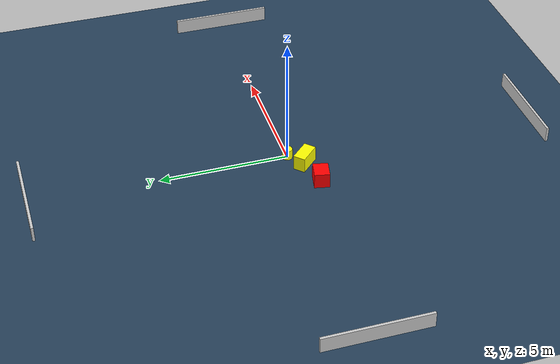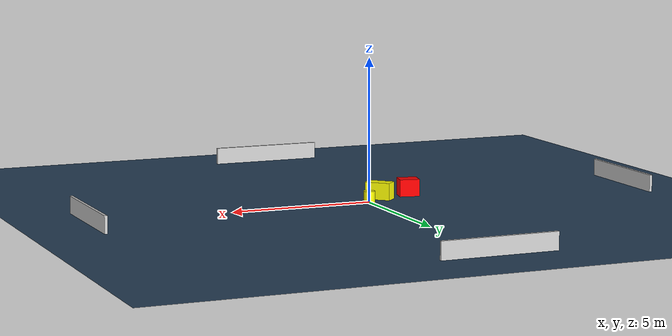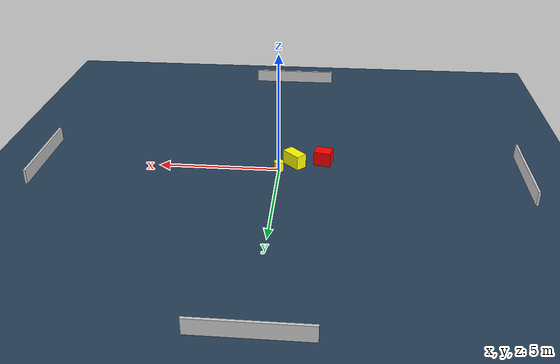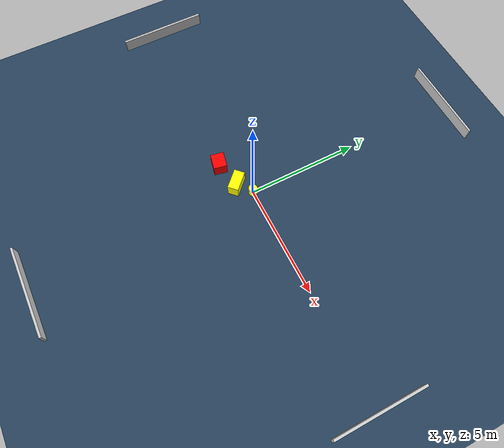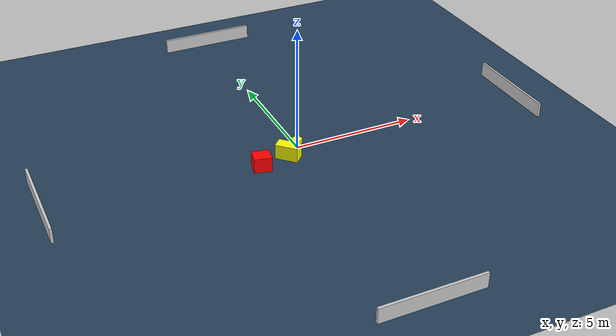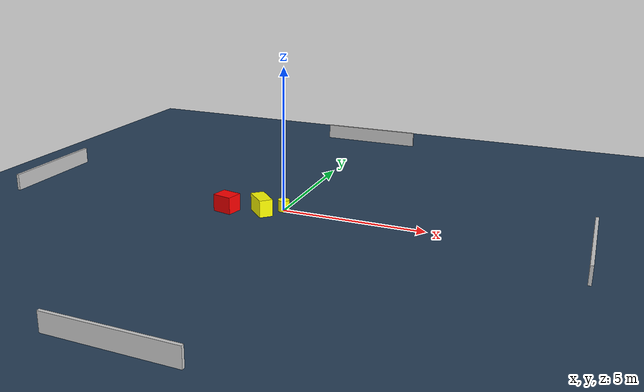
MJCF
<?xml version="1.0" ?>
<mujoco model="generated_environment">
  <option timestep="0.01" integrator="RK4" cone="elliptic"/>
  <default>
    <geom density="1"/>
  </default>
  <asset>
    <texture builtin="gradient" height="3072" name="skybox" rgb1="0.3 0.5 0.7" rgb2="0 0 0" type="skybox" width="512"/>
    <texture builtin="checker" height="300" name="groundplane" rgb1="0.2 0.3 0.4" rgb2="0.1 0.2 0.3" type="2d" width="300"/>
    <material name="groundplane" reflectance="0.2" texrepeat="5 5" texture="groundplane"/>
  </asset>
  <worldbody>
    <light dir="0 0 -1" directional="true" pos="0 0 1.5"/>
    <geom condim="3" friction="0.5 0.005 0.001" material="groundplane" name="floor" pos="0 0 0" size="0 0 0.05" type="plane"/>
    <body name="walls">
      <geom name="wall_1" condim="4" pos="-10.0 0.0 0.3" rgba="0.800000011920929 0.800000011920929 0.800000011920929 1.0" size="0.05 2.0 0.3" type="box"/>
      <geom name="wall_2" condim="4" pos="10.0 0.0 0.3" rgba="0.800000011920929 0.800000011920929 0.800000011920929 1.0" size="0.05 2.0 0.3" type="box"/>
      <geom name="wall_3" condim="4" pos="0.0 -10.0 0.3" rgba="0.800000011920929 0.800000011920929 0.800000011920929 1.0" size="2.0 0.05 0.3" type="box"/>
      <geom name="wall_4" condim="4" pos="0.0 10.0 0.3" rgba="0.800000011920929 0.800000011920929 0.800000011920929 1.0" size="2.0 0.05 0.3" type="box"/>
    </body>
    <body name="robot">
      <joint name="joint_x" type="slide" pos="0 0 0" axis="1 0 0"/>
      <joint name="joint_y" type="slide" pos="0 0 0" axis="0 1 0"/>
      <geom name="robot" type="cylinder" pos="0.0 0.0 0.2" size="0.2 0.2 0.0" mass="5.0" friction="1.0 0.005 0.0001" condim="4" rgba="1.0 1.0 0.0 1.0"/>
    </body>
    <body name="obstacle_1_movable">
      <geom name="obstacle_1_movable" condim="4" pos="-0.6088443172767788 -0.5036853433472495 0.3" euler="0 0 314.7426027567521" friction="0.0 0.005 0.001" rgba="1.0 1.0 0.0 1.0" size="0.4518916716634917 0.23707031426978514 0.3" type="box" mass="0.1"/>
      <joint type="free"/>
    </body>
    <body name="obstacle_2_static">
      <geom name="obstacle_2_static" condim="4" pos="-1.8166002628192817 -0.7695410222668907 0.3" euler="0 0 348.2696552572252" friction="0.0 0.005 0.001" rgba="1.0 0.0 0.0 1.0" size="0.34939207055539323 0.29437040882138055 0.3" type="box"/>
    </body>
  </worldbody>
  <actuator>
    <motor name="actuator_x" joint="joint_x" gear="1" ctrlrange="-1 1"/>
    <motor name="actuator_y" joint="joint_y" gear="1" ctrlrange="-1 1"/>
  </actuator>
</mujoco>
